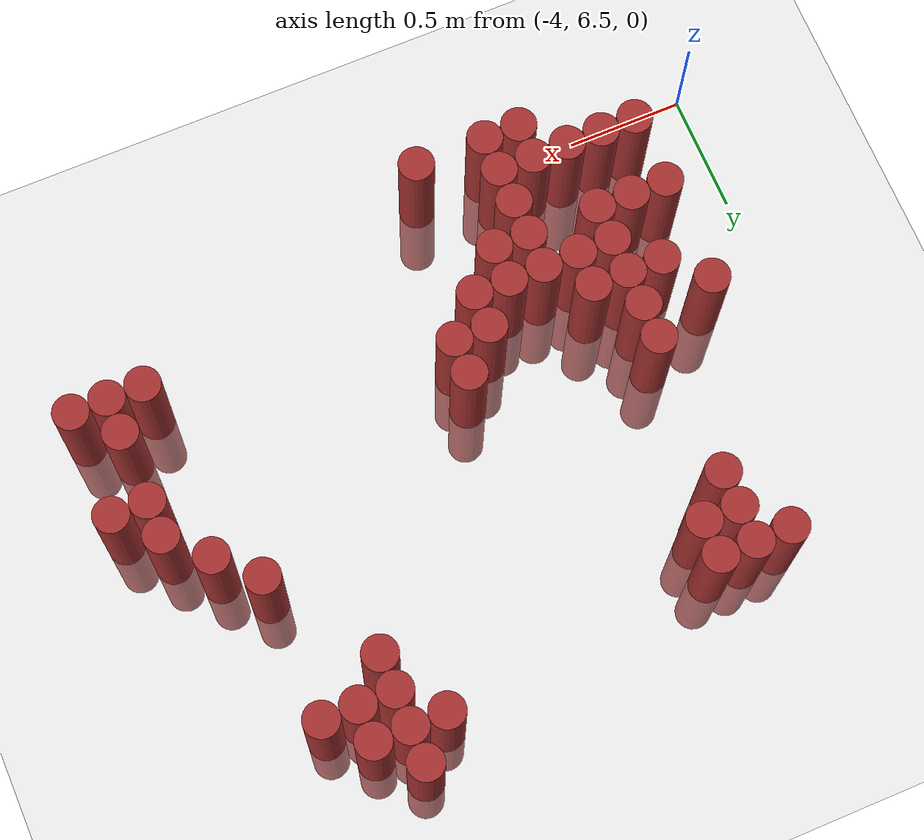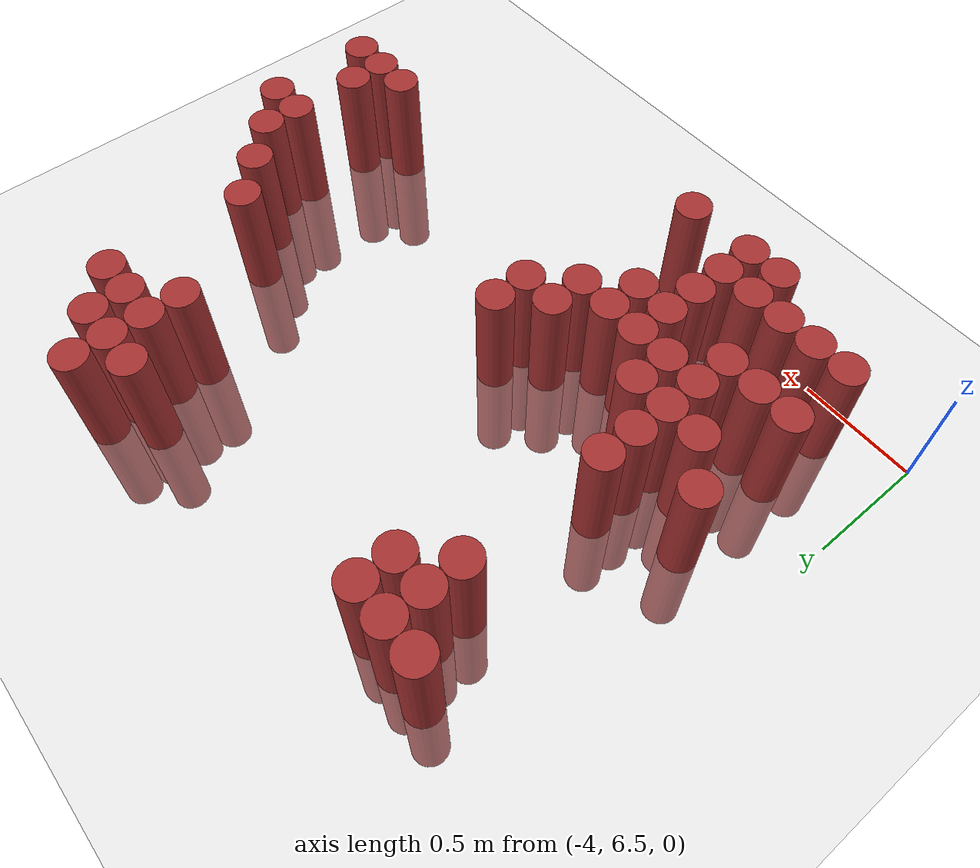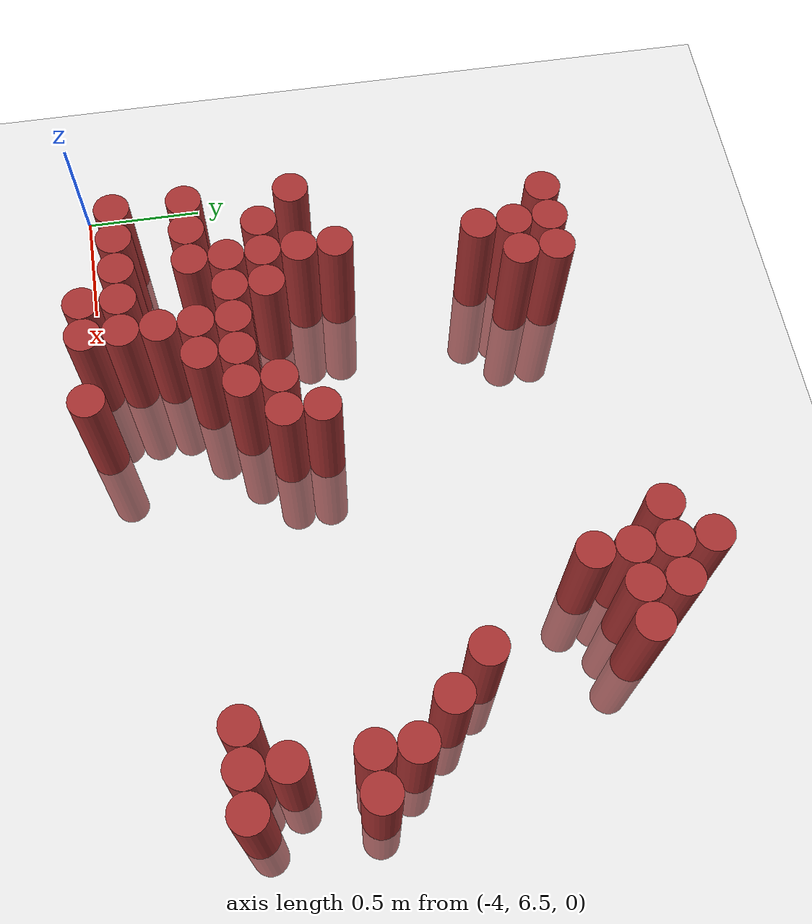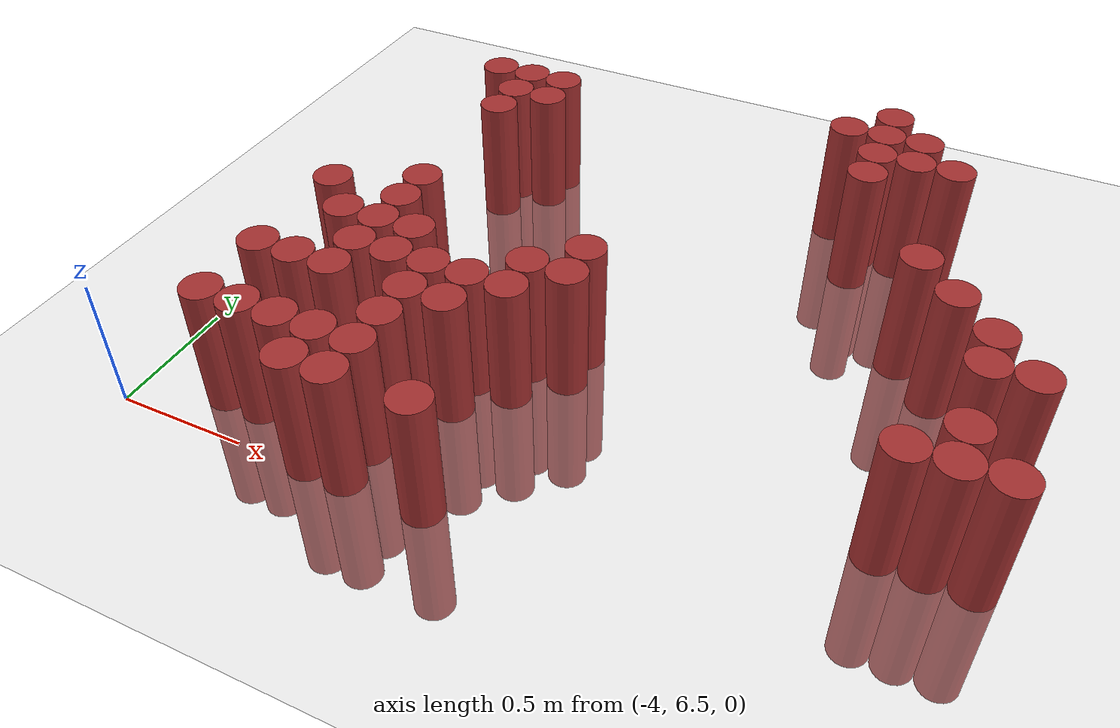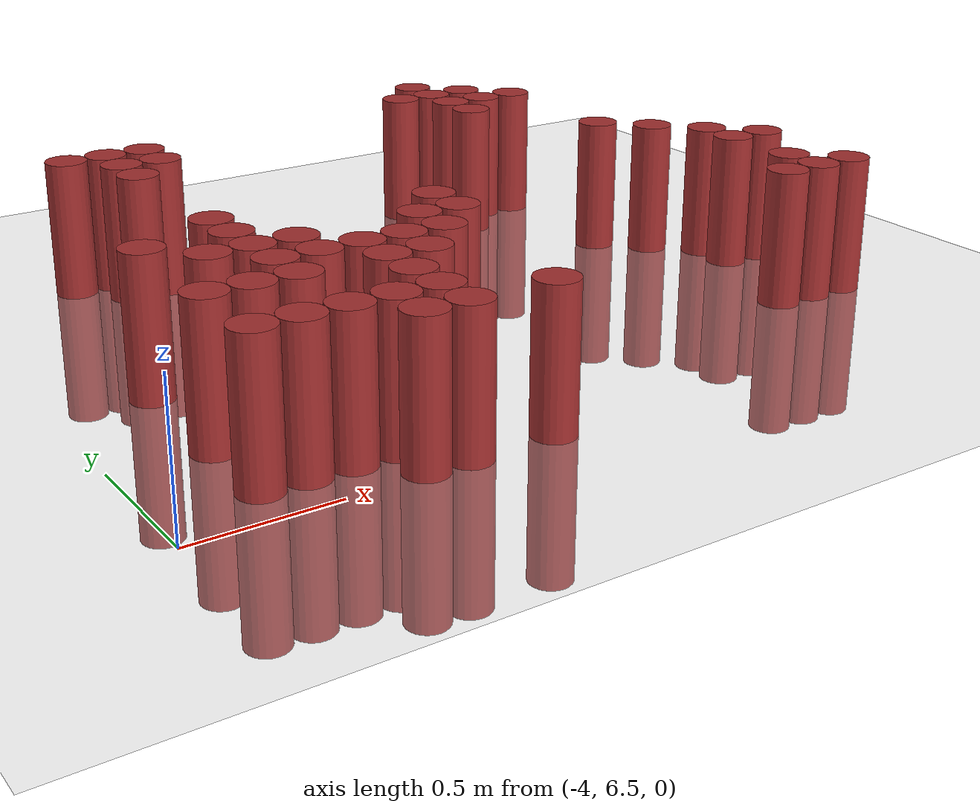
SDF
<sdf version="1.6">
 <world name="default">
  <model name="ground_plane">
   <static>1</static>
   <link name="link">
    <collision name="collision">
     <geometry><plane><normal>0 0 1</normal><size>100 100</size></plane></geometry>
     <surface><friction><ode><mu>100</mu><mu2>50</mu2></ode></friction></surface>
    </collision>
    <visual name="visual">
     <cast_shadows>0</cast_shadows>
     <geometry><plane><normal>0 0 1</normal><size>100 100</size></plane></geometry>
     <material>
      <script><uri>file://media/materials/scripts/gazebo.material</uri><name>Gazebo/Grey</name></script>
     </material>
    </visual>
   </link>
  </model>
  <model name="unit_cylinder_175">
   <static>1</static>
   <pose>-3.675000 6.675000 0.000000 0.000000 0.000000 0.000000</pose>
   <link name="link">
    <inertial>
     <mass>1</mass>
     <inertia><ixx>0.145833</ixx><ixy>0</ixy><ixz>0</ixz><iyy>0.145833</iyy><iyz>0</iyz><izz>0.125</izz></inertia>
    </inertial>
    <collision name="collision">
     <geometry><cylinder><radius>0.075000</radius><length>1</length></cylinder></geometry>
    </collision>
    <visual name="visual">
     <geometry><cylinder><radius>0.075000</radius><length>1</length></cylinder></geometry>
     <material>
      <ambient>0.648000 0.192000 0.192000 1</ambient>
      <diffuse>0.648000 0.192000 0.192000 1</diffuse>
     </material>
     <material>
      <script><name>Gazebo/Grey</name><uri>file://media/materials/scripts/gazebo.material</uri></script>
     </material>
    </visual>
   </link>
  </model>
  <model name="unit_cylinder_176">
   <static>1</static>
   <pose>-3.675000 6.975000 0.000000 0.000000 0.000000 0.000000</pose>
   <link name="link">
    <inertial>
     <mass>1</mass>
     <inertia><ixx>0.145833</ixx><ixy>0</ixy><ixz>0</ixz><iyy>0.145833</iyy><iyz>0</iyz><izz>0.125</izz></inertia>
    </inertial>
    <collision name="collision">
     <geometry><cylinder><radius>0.075000</radius><length>1</length></cylinder></geometry>
    </collision>
    <visual name="visual">
     <geometry><cylinder><radius>0.075000</radius><length>1</length></cylinder></geometry>
     <material>
      <ambient>0.648000 0.192000 0.192000 1</ambient>
      <diffuse>0.648000 0.192000 0.192000 1</diffuse>
     </material>
     <material>
      <script><name>Gazebo/Grey</name><uri>file://media/materials/scripts/gazebo.material</uri></script>
     </material>
    </visual>
   </link>
  </model>
  <model name="unit_cylinder_177">
   <static>1</static>
   <pose>-3.675000 7.425000 0.000000 0.000000 0.000000 0.000000</pose>
   <link name="link">
    <inertial>
     <mass>1</mass>
     <inertia><ixx>0.145833</ixx><ixy>0</ixy><ixz>0</ixz><iyy>0.145833</iyy><iyz>0</iyz><izz>0.125</izz></inertia>
    </inertial>
    <collision name="collision">
     <geometry><cylinder><radius>0.075000</radius><length>1</length></cylinder></geometry>
    </collision>
    <visual name="visual">
     <geometry><cylinder><radius>0.075000</radius><length>1</length></cylinder></geometry>
     <material>
      <ambient>0.648000 0.192000 0.192000 1</ambient>
      <diffuse>0.648000 0.192000 0.192000 1</diffuse>
     </material>
     <material>
      <script><name>Gazebo/Grey</name><uri>file://media/materials/scripts/gazebo.material</uri></script>
     </material>
    </visual>
   </link>
  </model>
  <model name="unit_cylinder_179">
   <static>1</static>
   <pose>-3.525000 6.675000 0.000000 0.000000 0.000000 0.000000</pose>
   <link name="link">
    <inertial>
     <mass>1</mass>
     <inertia><ixx>0.145833</ixx><ixy>0</ixy><ixz>0</ixz><iyy>0.145833</iyy><iyz>0</iyz><izz>0.125</izz></inertia>
    </inertial>
    <collision name="collision">
     <geometry><cylinder><radius>0.075000</radius><length>1</length></cylinder></geometry>
    </collision>
    <visual name="visual">
     <geometry><cylinder><radius>0.075000</radius><length>1</length></cylinder></geometry>
     <material>
      <ambient>0.648000 0.192000 0.192000 1</ambient>
      <diffuse>0.648000 0.192000 0.192000 1</diffuse>
     </material>
     <material>
      <script><name>Gazebo/Grey</name><uri>file://media/materials/scripts/gazebo.material</uri></script>
     </material>
    </visual>
   </link>
  </model>
  <model name="unit_cylinder_180">
   <static>1</static>
   <pose>-3.525000 6.975000 0.000000 0.000000 0.000000 0.000000</pose>
   <link name="link">
    <inertial>
     <mass>1</mass>
     <inertia><ixx>0.145833</ixx><ixy>0</ixy><ixz>0</ixz><iyy>0.145833</iyy><iyz>0</iyz><izz>0.125</izz></inertia>
    </inertial>
    <collision name="collision">
     <geometry><cylinder><radius>0.075000</radius><length>1</length></cylinder></geometry>
    </collision>
    <visual name="visual">
     <geometry><cylinder><radius>0.075000</radius><length>1</length></cylinder></geometry>
     <material>
      <ambient>0.648000 0.192000 0.192000 1</ambient>
      <diffuse>0.648000 0.192000 0.192000 1</diffuse>
     </material>
     <material>
      <script><name>Gazebo/Grey</name><uri>file://media/materials/scripts/gazebo.material</uri></script>
     </material>
    </visual>
   </link>
  </model>
  <model name="unit_cylinder_181">
   <static>1</static>
   <pose>-3.525000 7.275000 0.000000 0.000000 0.000000 0.000000</pose>
   <link name="link">
    <inertial>
     <mass>1</mass>
     <inertia><ixx>0.145833</ixx><ixy>0</ixy><ixz>0</ixz><iyy>0.145833</iyy><iyz>0</iyz><izz>0.125</izz></inertia>
    </inertial>
    <collision name="collision">
     <geometry><cylinder><radius>0.075000</radius><length>1</length></cylinder></geometry>
    </collision>
    <visual name="visual">
     <geometry><cylinder><radius>0.075000</radius><length>1</length></cylinder></geometry>
     <material>
      <ambient>0.648000 0.192000 0.192000 1</ambient>
      <diffuse>0.648000 0.192000 0.192000 1</diffuse>
     </material>
     <material>
      <script><name>Gazebo/Grey</name><uri>file://media/materials/scripts/gazebo.material</uri></script>
     </material>
    </visual>
   </link>
  </model>
  <model name="unit_cylinder_182">
   <static>1</static>
   <pose>-3.525000 8.475000 0.000000 0.000000 0.000000 0.000000</pose>
   <link name="link">
    <inertial>
     <mass>1</mass>
     <inertia><ixx>0.145833</ixx><ixy>0</ixy><ixz>0</ixz><iyy>0.145833</iyy><iyz>0</iyz><izz>0.125</izz></inertia>
    </inertial>
    <collision name="collision">
     <geometry><cylinder><radius>0.075000</radius><length>1</length></cylinder></geometry>
    </collision>
    <visual name="visual">
     <geometry><cylinder><radius>0.075000</radius><length>1</length></cylinder></geometry>
     <material>
      <ambient>0.648000 0.192000 0.192000 1</ambient>
      <diffuse>0.648000 0.192000 0.192000 1</diffuse>
     </material>
     <material>
      <script><name>Gazebo/Grey</name><uri>file://media/materials/scripts/gazebo.material</uri></script>
     </material>
    </visual>
   </link>
  </model>
  <model name="unit_cylinder_183">
   <static>1</static>
   <pose>-3.375000 6.675000 0.000000 0.000000 0.000000 0.000000</pose>
   <link name="link">
    <inertial>
     <mass>1</mass>
     <inertia><ixx>0.145833</ixx><ixy>0</ixy><ixz>0</ixz><iyy>0.145833</iyy><iyz>0</iyz><izz>0.125</izz></inertia>
    </inertial>
    <collision name="collision">
     <geometry><cylinder><radius>0.075000</radius><length>1</length></cylinder></geometry>
    </collision>
    <visual name="visual">
     <geometry><cylinder><radius>0.075000</radius><length>1</length></cylinder></geometry>
     <material>
      <ambient>0.648000 0.192000 0.192000 1</ambient>
      <diffuse>0.648000 0.192000 0.192000 1</diffuse>
     </material>
     <material>
      <script><name>Gazebo/Grey</name><uri>file://media/materials/scripts/gazebo.material</uri></script>
     </material>
    </visual>
   </link>
  </model>
  <model name="unit_cylinder_184">
   <static>1</static>
   <pose>-3.375000 6.975000 0.000000 0.000000 0.000000 0.000000</pose>
   <link name="link">
    <inertial>
     <mass>1</mass>
     <inertia><ixx>0.145833</ixx><ixy>0</ixy><ixz>0</ixz><iyy>0.145833</iyy><iyz>0</iyz><izz>0.125</izz></inertia>
    </inertial>
    <collision name="collision">
     <geometry><cylinder><radius>0.075000</radius><length>1</length></cylinder></geometry>
    </collision>
    <visual name="visual">
     <geometry><cylinder><radius>0.075000</radius><length>1</length></cylinder></geometry>
     <material>
      <ambient>0.648000 0.192000 0.192000 1</ambient>
      <diffuse>0.648000 0.192000 0.192000 1</diffuse>
     </material>
     <material>
      <script><name>Gazebo/Grey</name><uri>file://media/materials/scripts/gazebo.material</uri></script>
     </material>
    </visual>
   </link>
  </model>
  <model name="unit_cylinder_185">
   <static>1</static>
   <pose>-3.375000 7.125000 0.000000 0.000000 0.000000 0.000000</pose>
   <link name="link">
    <inertial>
     <mass>1</mass>
     <inertia><ixx>0.145833</ixx><ixy>0</ixy><ixz>0</ixz><iyy>0.145833</iyy><iyz>0</iyz><izz>0.125</izz></inertia>
    </inertial>
    <collision name="collision">
     <geometry><cylinder><radius>0.075000</radius><length>1</length></cylinder></geometry>
    </collision>
    <visual name="visual">
     <geometry><cylinder><radius>0.075000</radius><length>1</length></cylinder></geometry>
     <material>
      <ambient>0.648000 0.192000 0.192000 1</ambient>
      <diffuse>0.648000 0.192000 0.192000 1</diffuse>
     </material>
     <material>
      <script><name>Gazebo/Grey</name><uri>file://media/materials/scripts/gazebo.material</uri></script>
     </material>
    </visual>
   </link>
  </model>
  <model name="unit_cylinder_186">
   <static>1</static>
   <pose>-3.375000 7.275000 0.000000 0.000000 0.000000 0.000000</pose>
   <link name="link">
    <inertial>
     <mass>1</mass>
     <inertia><ixx>0.145833</ixx><ixy>0</ixy><ixz>0</ixz><iyy>0.145833</iyy><iyz>0</iyz><izz>0.125</izz></inertia>
    </inertial>
    <collision name="collision">
     <geometry><cylinder><radius>0.075000</radius><length>1</length></cylinder></geometry>
    </collision>
    <visual name="visual">
     <geometry><cylinder><radius>0.075000</radius><length>1</length></cylinder></geometry>
     <material>
      <ambient>0.648000 0.192000 0.192000 1</ambient>
      <diffuse>0.648000 0.192000 0.192000 1</diffuse>
     </material>
     <material>
      <script><name>Gazebo/Grey</name><uri>file://media/materials/scripts/gazebo.material</uri></script>
     </material>
    </visual>
   </link>
  </model>
  <model name="unit_cylinder_187">
   <static>1</static>
   <pose>-3.375000 7.425000 0.000000 0.000000 0.000000 0.000000</pose>
   <link name="link">
    <inertial>
     <mass>1</mass>
     <inertia><ixx>0.145833</ixx><ixy>0</ixy><ixz>0</ixz><iyy>0.145833</iyy><iyz>0</iyz><izz>0.125</izz></inertia>
    </inertial>
    <collision name="collision">
     <geometry><cylinder><radius>0.075000</radius><length>1</length></cylinder></geometry>
    </collision>
    <visual name="visual">
     <geometry><cylinder><radius>0.075000</radius><length>1</length></cylinder></geometry>
     <material>
      <ambient>0.648000 0.192000 0.192000 1</ambient>
      <diffuse>0.648000 0.192000 0.192000 1</diffuse>
     </material>
     <material>
      <script><name>Gazebo/Grey</name><uri>file://media/materials/scripts/gazebo.material</uri></script>
     </material>
    </visual>
   </link>
  </model>
  <model name="unit_cylinder_188">
   <static>1</static>
   <pose>-3.375000 7.575000 0.000000 0.000000 0.000000 0.000000</pose>
   <link name="link">
    <inertial>
     <mass>1</mass>
     <inertia><ixx>0.145833</ixx><ixy>0</ixy><ixz>0</ixz><iyy>0.145833</iyy><iyz>0</iyz><izz>0.125</izz></inertia>
    </inertial>
    <collision name="collision">
     <geometry><cylinder><radius>0.075000</radius><length>1</length></cylinder></geometry>
    </collision>
    <visual name="visual">
     <geometry><cylinder><radius>0.075000</radius><length>1</length></cylinder></geometry>
     <material>
      <ambient>0.648000 0.192000 0.192000 1</ambient>
      <diffuse>0.648000 0.192000 0.192000 1</diffuse>
     </material>
     <material>
      <script><name>Gazebo/Grey</name><uri>file://media/materials/scripts/gazebo.material</uri></script>
     </material>
    </visual>
   </link>
  </model>
  <model name="unit_cylinder_189">
   <static>1</static>
   <pose>-3.375000 8.175000 0.000000 0.000000 0.000000 0.000000</pose>
   <link name="link">
    <inertial>
     <mass>1</mass>
     <inertia><ixx>0.145833</ixx><ixy>0</ixy><ixz>0</ixz><iyy>0.145833</iyy><iyz>0</iyz><izz>0.125</izz></inertia>
    </inertial>
    <collision name="collision">
     <geometry><cylinder><radius>0.075000</radius><length>1</length></cylinder></geometry>
    </collision>
    <visual name="visual">
     <geometry><cylinder><radius>0.075000</radius><length>1</length></cylinder></geometry>
     <material>
      <ambient>0.648000 0.192000 0.192000 1</ambient>
      <diffuse>0.648000 0.192000 0.192000 1</diffuse>
     </material>
     <material>
      <script><name>Gazebo/Grey</name><uri>file://media/materials/scripts/gazebo.material</uri></script>
     </material>
    </visual>
   </link>
  </model>
  <model name="unit_cylinder_190">
   <static>1</static>
   <pose>-3.375000 8.325000 0.000000 0.000000 0.000000 0.000000</pose>
   <link name="link">
    <inertial>
     <mass>1</mass>
     <inertia><ixx>0.145833</ixx><ixy>0</ixy><ixz>0</ixz><iyy>0.145833</iyy><iyz>0</iyz><izz>0.125</izz></inertia>
    </inertial>
    <collision name="collision">
     <geometry><cylinder><radius>0.075000</radius><length>1</length></cylinder></geometry>
    </collision>
    <visual name="visual">
     <geometry><cylinder><radius>0.075000</radius><length>1</length></cylinder></geometry>
     <material>
      <ambient>0.648000 0.192000 0.192000 1</ambient>
      <diffuse>0.648000 0.192000 0.192000 1</diffuse>
     </material>
     <material>
      <script><name>Gazebo/Grey</name><uri>file://media/materials/scripts/gazebo.material</uri></script>
     </material>
    </visual>
   </link>
  </model>
  <model name="unit_cylinder_191">
   <static>1</static>
   <pose>-3.375000 8.475000 0.000000 0.000000 0.000000 0.000000</pose>
   <link name="link">
    <inertial>
     <mass>1</mass>
     <inertia><ixx>0.145833</ixx><ixy>0</ixy><ixz>0</ixz><iyy>0.145833</iyy><iyz>0</iyz><izz>0.125</izz></inertia>
    </inertial>
    <collision name="collision">
     <geometry><cylinder><radius>0.075000</radius><length>1</length></cylinder></geometry>
    </collision>
    <visual name="visual">
     <geometry><cylinder><radius>0.075000</radius><length>1</length></cylinder></geometry>
     <material>
      <ambient>0.648000 0.192000 0.192000 1</ambient>
      <diffuse>0.648000 0.192000 0.192000 1</diffuse>
     </material>
     <material>
      <script><name>Gazebo/Grey</name><uri>file://media/materials/scripts/gazebo.material</uri></script>
     </material>
    </visual>
   </link>
  </model>
  <model name="unit_cylinder_192">
   <static>1</static>
   <pose>-3.225000 6.525000 0.000000 0.000000 0.000000 0.000000</pose>
   <link name="link">
    <inertial>
     <mass>1</mass>
     <inertia><ixx>0.145833</ixx><ixy>0</ixy><ixz>0</ixz><iyy>0.145833</iyy><iyz>0</iyz><izz>0.125</izz></inertia>
    </inertial>
    <collision name="collision">
     <geometry><cylinder><radius>0.075000</radius><length>1</length></cylinder></geometry>
    </collision>
    <visual name="visual">
     <geometry><cylinder><radius>0.075000</radius><length>1</length></cylinder></geometry>
     <material>
      <ambient>0.648000 0.192000 0.192000 1</ambient>
      <diffuse>0.648000 0.192000 0.192000 1</diffuse>
     </material>
     <material>
      <script><name>Gazebo/Grey</name><uri>file://media/materials/scripts/gazebo.material</uri></script>
     </material>
    </visual>
   </link>
  </model>
  <model name="unit_cylinder_193">
   <static>1</static>
   <pose>-3.225000 6.675000 0.000000 0.000000 0.000000 0.000000</pose>
   <link name="link">
    <inertial>
     <mass>1</mass>
     <inertia><ixx>0.145833</ixx><ixy>0</ixy><ixz>0</ixz><iyy>0.145833</iyy><iyz>0</iyz><izz>0.125</izz></inertia>
    </inertial>
    <collision name="collision">
     <geometry><cylinder><radius>0.075000</radius><length>1</length></cylinder></geometry>
    </collision>
    <visual name="visual">
     <geometry><cylinder><radius>0.075000</radius><length>1</length></cylinder></geometry>
     <material>
      <ambient>0.648000 0.192000 0.192000 1</ambient>
      <diffuse>0.648000 0.192000 0.192000 1</diffuse>
     </material>
     <material>
      <script><name>Gazebo/Grey</name><uri>file://media/materials/scripts/gazebo.material</uri></script>
     </material>
    </visual>
   </link>
  </model>
  <model name="unit_cylinder_194">
   <static>1</static>
   <pose>-3.225000 7.125000 0.000000 0.000000 0.000000 0.000000</pose>
   <link name="link">
    <inertial>
     <mass>1</mass>
     <inertia><ixx>0.145833</ixx><ixy>0</ixy><ixz>0</ixz><iyy>0.145833</iyy><iyz>0</iyz><izz>0.125</izz></inertia>
    </inertial>
    <collision name="collision">
     <geometry><cylinder><radius>0.075000</radius><length>1</length></cylinder></geometry>
    </collision>
    <visual name="visual">
     <geometry><cylinder><radius>0.075000</radius><length>1</length></cylinder></geometry>
     <material>
      <ambient>0.648000 0.192000 0.192000 1</ambient>
      <diffuse>0.648000 0.192000 0.192000 1</diffuse>
     </material>
     <material>
      <script><name>Gazebo/Grey</name><uri>file://media/materials/scripts/gazebo.material</uri></script>
     </material>
    </visual>
   </link>
  </model>
  <model name="unit_cylinder_195">
   <static>1</static>
   <pose>-3.225000 7.275000 0.000000 0.000000 0.000000 0.000000</pose>
   <link name="link">
    <inertial>
     <mass>1</mass>
     <inertia><ixx>0.145833</ixx><ixy>0</ixy><ixz>0</ixz><iyy>0.145833</iyy><iyz>0</iyz><izz>0.125</izz></inertia>
    </inertial>
    <collision name="collision">
     <geometry><cylinder><radius>0.075000</radius><length>1</length></cylinder></geometry>
    </collision>
    <visual name="visual">
     <geometry><cylinder><radius>0.075000</radius><length>1</length></cylinder></geometry>
     <material>
      <ambient>0.648000 0.192000 0.192000 1</ambient>
      <diffuse>0.648000 0.192000 0.192000 1</diffuse>
     </material>
     <material>
      <script><name>Gazebo/Grey</name><uri>file://media/materials/scripts/gazebo.material</uri></script>
     </material>
    </visual>
   </link>
  </model>
  <model name="unit_cylinder_196">
   <static>1</static>
   <pose>-3.225000 8.325000 0.000000 0.000000 0.000000 0.000000</pose>
   <link name="link">
    <inertial>
     <mass>1</mass>
     <inertia><ixx>0.145833</ixx><ixy>0</ixy><ixz>0</ixz><iyy>0.145833</iyy><iyz>0</iyz><izz>0.125</izz></inertia>
    </inertial>
    <collision name="collision">
     <geometry><cylinder><radius>0.075000</radius><length>1</length></cylinder></geometry>
    </collision>
    <visual name="visual">
     <geometry><cylinder><radius>0.075000</radius><length>1</length></cylinder></geometry>
     <material>
      <ambient>0.648000 0.192000 0.192000 1</ambient>
      <diffuse>0.648000 0.192000 0.192000 1</diffuse>
     </material>
     <material>
      <script><name>Gazebo/Grey</name><uri>file://media/materials/scripts/gazebo.material</uri></script>
     </material>
    </visual>
   </link>
  </model>
  <model name="unit_cylinder_197">
   <static>1</static>
   <pose>-3.225000 8.475000 0.000000 0.000000 0.000000 0.000000</pose>
   <link name="link">
    <inertial>
     <mass>1</mass>
     <inertia><ixx>0.145833</ixx><ixy>0</ixy><ixz>0</ixz><iyy>0.145833</iyy><iyz>0</iyz><izz>0.125</izz></inertia>
    </inertial>
    <collision name="collision">
     <geometry><cylinder><radius>0.075000</radius><length>1</length></cylinder></geometry>
    </collision>
    <visual name="visual">
     <geometry><cylinder><radius>0.075000</radius><length>1</length></cylinder></geometry>
     <material>
      <ambient>0.648000 0.192000 0.192000 1</ambient>
      <diffuse>0.648000 0.192000 0.192000 1</diffuse>
     </material>
     <material>
      <script><name>Gazebo/Grey</name><uri>file://media/materials/scripts/gazebo.material</uri></script>
     </material>
    </visual>
   </link>
  </model>
  <model name="unit_cylinder_200">
   <static>1</static>
   <pose>-3.075000 6.525000 0.000000 0.000000 0.000000 0.000000</pose>
   <link name="link">
    <inertial>
     <mass>1</mass>
     <inertia><ixx>0.145833</ixx><ixy>0</ixy><ixz>0</ixz><iyy>0.145833</iyy><iyz>0</iyz><izz>0.125</izz></inertia>
    </inertial>
    <collision name="collision">
     <geometry><cylinder><radius>0.075000</radius><length>1</length></cylinder></geometry>
    </collision>
    <visual name="visual">
     <geometry><cylinder><radius>0.075000</radius><length>1</length></cylinder></geometry>
     <material>
      <ambient>0.648000 0.192000 0.192000 1</ambient>
      <diffuse>0.648000 0.192000 0.192000 1</diffuse>
     </material>
     <material>
      <script><name>Gazebo/Grey</name><uri>file://media/materials/scripts/gazebo.material</uri></script>
     </material>
    </visual>
   </link>
  </model>
  <model name="unit_cylinder_201">
   <static>1</static>
   <pose>-3.075000 6.675000 0.000000 0.000000 0.000000 0.000000</pose>
   <link name="link">
    <inertial>
     <mass>1</mass>
     <inertia><ixx>0.145833</ixx><ixy>0</ixy><ixz>0</ixz><iyy>0.145833</iyy><iyz>0</iyz><izz>0.125</izz></inertia>
    </inertial>
    <collision name="collision">
     <geometry><cylinder><radius>0.075000</radius><length>1</length></cylinder></geometry>
    </collision>
    <visual name="visual">
     <geometry><cylinder><radius>0.075000</radius><length>1</length></cylinder></geometry>
     <material>
      <ambient>0.648000 0.192000 0.192000 1</ambient>
      <diffuse>0.648000 0.192000 0.192000 1</diffuse>
     </material>
     <material>
      <script><name>Gazebo/Grey</name><uri>file://media/materials/scripts/gazebo.material</uri></script>
     </material>
    </visual>
   </link>
  </model>
  <model name="unit_cylinder_202">
   <static>1</static>
   <pose>-3.075000 6.825000 0.000000 0.000000 0.000000 0.000000</pose>
   <link name="link">
    <inertial>
     <mass>1</mass>
     <inertia><ixx>0.145833</ixx><ixy>0</ixy><ixz>0</ixz><iyy>0.145833</iyy><iyz>0</iyz><izz>0.125</izz></inertia>
    </inertial>
    <collision name="collision">
     <geometry><cylinder><radius>0.075000</radius><length>1</length></cylinder></geometry>
    </collision>
    <visual name="visual">
     <geometry><cylinder><radius>0.075000</radius><length>1</length></cylinder></geometry>
     <material>
      <ambient>0.648000 0.192000 0.192000 1</ambient>
      <diffuse>0.648000 0.192000 0.192000 1</diffuse>
     </material>
     <material>
      <script><name>Gazebo/Grey</name><uri>file://media/materials/scripts/gazebo.material</uri></script>
     </material>
    </visual>
   </link>
  </model>
  <model name="unit_cylinder_203">
   <static>1</static>
   <pose>-3.075000 6.975000 0.000000 0.000000 0.000000 0.000000</pose>
   <link name="link">
    <inertial>
     <mass>1</mass>
     <inertia><ixx>0.145833</ixx><ixy>0</ixy><ixz>0</ixz><iyy>0.145833</iyy><iyz>0</iyz><izz>0.125</izz></inertia>
    </inertial>
    <collision name="collision">
     <geometry><cylinder><radius>0.075000</radius><length>1</length></cylinder></geometry>
    </collision>
    <visual name="visual">
     <geometry><cylinder><radius>0.075000</radius><length>1</length></cylinder></geometry>
     <material>
      <ambient>0.648000 0.192000 0.192000 1</ambient>
      <diffuse>0.648000 0.192000 0.192000 1</diffuse>
     </material>
     <material>
      <script><name>Gazebo/Grey</name><uri>file://media/materials/scripts/gazebo.material</uri></script>
     </material>
    </visual>
   </link>
  </model>
  <model name="unit_cylinder_204">
   <static>1</static>
   <pose>-3.075000 7.125000 0.000000 0.000000 0.000000 0.000000</pose>
   <link name="link">
    <inertial>
     <mass>1</mass>
     <inertia><ixx>0.145833</ixx><ixy>0</ixy><ixz>0</ixz><iyy>0.145833</iyy><iyz>0</iyz><izz>0.125</izz></inertia>
    </inertial>
    <collision name="collision">
     <geometry><cylinder><radius>0.075000</radius><length>1</length></cylinder></geometry>
    </collision>
    <visual name="visual">
     <geometry><cylinder><radius>0.075000</radius><length>1</length></cylinder></geometry>
     <material>
      <ambient>0.648000 0.192000 0.192000 1</ambient>
      <diffuse>0.648000 0.192000 0.192000 1</diffuse>
     </material>
     <material>
      <script><name>Gazebo/Grey</name><uri>file://media/materials/scripts/gazebo.material</uri></script>
     </material>
    </visual>
   </link>
  </model>
  <model name="unit_cylinder_207">
   <static>1</static>
   <pose>-2.925000 6.975000 0.000000 0.000000 0.000000 0.000000</pose>
   <link name="link">
    <inertial>
     <mass>1</mass>
     <inertia><ixx>0.145833</ixx><ixy>0</ixy><ixz>0</ixz><iyy>0.145833</iyy><iyz>0</iyz><izz>0.125</izz></inertia>
    </inertial>
    <collision name="collision">
     <geometry><cylinder><radius>0.075000</radius><length>1</length></cylinder></geometry>
    </collision>
    <visual name="visual">
     <geometry><cylinder><radius>0.075000</radius><length>1</length></cylinder></geometry>
     <material>
      <ambient>0.648000 0.192000 0.192000 1</ambient>
      <diffuse>0.648000 0.192000 0.192000 1</diffuse>
     </material>
     <material>
      <script><name>Gazebo/Grey</name><uri>file://media/materials/scripts/gazebo.material</uri></script>
     </material>
    </visual>
   </link>
  </model>
  <model name="unit_cylinder_208">
   <static>1</static>
   <pose>-2.925000 7.125000 0.000000 0.000000 0.000000 0.000000</pose>
   <link name="link">
    <inertial>
     <mass>1</mass>
     <inertia><ixx>0.145833</ixx><ixy>0</ixy><ixz>0</ixz><iyy>0.145833</iyy><iyz>0</iyz><izz>0.125</izz></inertia>
    </inertial>
    <collision name="collision">
     <geometry><cylinder><radius>0.075000</radius><length>1</length></cylinder></geometry>
    </collision>
    <visual name="visual">
     <geometry><cylinder><radius>0.075000</radius><length>1</length></cylinder></geometry>
     <material>
      <ambient>0.648000 0.192000 0.192000 1</ambient>
      <diffuse>0.648000 0.192000 0.192000 1</diffuse>
     </material>
     <material>
      <script><name>Gazebo/Grey</name><uri>file://media/materials/scripts/gazebo.material</uri></script>
     </material>
    </visual>
   </link>
  </model>
  <model name="unit_cylinder_211">
   <static>1</static>
   <pose>-2.775000 6.525000 0.000000 0.000000 0.000000 0.000000</pose>
   <link name="link">
    <inertial>
     <mass>1</mass>
     <inertia><ixx>0.145833</ixx><ixy>0</ixy><ixz>0</ixz><iyy>0.145833</iyy><iyz>0</iyz><izz>0.125</izz></inertia>
    </inertial>
    <collision name="collision">
     <geometry><cylinder><radius>0.075000</radius><length>1</length></cylinder></geometry>
    </collision>
    <visual name="visual">
     <geometry><cylinder><radius>0.075000</radius><length>1</length></cylinder></geometry>
     <material>
      <ambient>0.648000 0.192000 0.192000 1</ambient>
      <diffuse>0.648000 0.192000 0.192000 1</diffuse>
     </material>
     <material>
      <script><name>Gazebo/Grey</name><uri>file://media/materials/scripts/gazebo.material</uri></script>
     </material>
    </visual>
   </link>
  </model>
  <model name="unit_cylinder_212">
   <static>1</static>
   <pose>-2.775000 7.125000 0.000000 0.000000 0.000000 0.000000</pose>
   <link name="link">
    <inertial>
     <mass>1</mass>
     <inertia><ixx>0.145833</ixx><ixy>0</ixy><ixz>0</ixz><iyy>0.145833</iyy><iyz>0</iyz><izz>0.125</izz></inertia>
    </inertial>
    <collision name="collision">
     <geometry><cylinder><radius>0.075000</radius><length>1</length></cylinder></geometry>
    </collision>
    <visual name="visual">
     <geometry><cylinder><radius>0.075000</radius><length>1</length></cylinder></geometry>
     <material>
      <ambient>0.648000 0.192000 0.192000 1</ambient>
      <diffuse>0.648000 0.192000 0.192000 1</diffuse>
     </material>
     <material>
      <script><name>Gazebo/Grey</name><uri>file://media/materials/scripts/gazebo.material</uri></script>
     </material>
    </visual>
   </link>
  </model>
  <model name="unit_cylinder_213">
   <static>1</static>
   <pose>-2.775000 7.275000 0.000000 0.000000 0.000000 0.000000</pose>
   <link name="link">
    <inertial>
     <mass>1</mass>
     <inertia><ixx>0.145833</ixx><ixy>0</ixy><ixz>0</ixz><iyy>0.145833</iyy><iyz>0</iyz><izz>0.125</izz></inertia>
    </inertial>
    <collision name="collision">
     <geometry><cylinder><radius>0.075000</radius><length>1</length></cylinder></geometry>
    </collision>
    <visual name="visual">
     <geometry><cylinder><radius>0.075000</radius><length>1</length></cylinder></geometry>
     <material>
      <ambient>0.648000 0.192000 0.192000 1</ambient>
      <diffuse>0.648000 0.192000 0.192000 1</diffuse>
     </material>
     <material>
      <script><name>Gazebo/Grey</name><uri>file://media/materials/scripts/gazebo.material</uri></script>
     </material>
    </visual>
   </link>
  </model>
  <model name="unit_cylinder_214">
   <static>1</static>
   <pose>-2.625000 7.275000 0.000000 0.000000 0.000000 0.000000</pose>
   <link name="link">
    <inertial>
     <mass>1</mass>
     <inertia><ixx>0.145833</ixx><ixy>0</ixy><ixz>0</ixz><iyy>0.145833</iyy><iyz>0</iyz><izz>0.125</izz></inertia>
    </inertial>
    <collision name="collision">
     <geometry><cylinder><radius>0.075000</radius><length>1</length></cylinder></geometry>
    </collision>
    <visual name="visual">
     <geometry><cylinder><radius>0.075000</radius><length>1</length></cylinder></geometry>
     <material>
      <ambient>0.648000 0.192000 0.192000 1</ambient>
      <diffuse>0.648000 0.192000 0.192000 1</diffuse>
     </material>
     <material>
      <script><name>Gazebo/Grey</name><uri>file://media/materials/scripts/gazebo.material</uri></script>
     </material>
    </visual>
   </link>
  </model>
  <model name="unit_cylinder_215">
   <static>1</static>
   <pose>-2.625000 7.425000 0.000000 0.000000 0.000000 0.000000</pose>
   <link name="link">
    <inertial>
     <mass>1</mass>
     <inertia><ixx>0.145833</ixx><ixy>0</ixy><ixz>0</ixz><iyy>0.145833</iyy><iyz>0</iyz><izz>0.125</izz></inertia>
    </inertial>
    <collision name="collision">
     <geometry><cylinder><radius>0.075000</radius><length>1</length></cylinder></geometry>
    </collision>
    <visual name="visual">
     <geometry><cylinder><radius>0.075000</radius><length>1</length></cylinder></geometry>
     <material>
      <ambient>0.648000 0.192000 0.192000 1</ambient>
      <diffuse>0.648000 0.192000 0.192000 1</diffuse>
     </material>
     <material>
      <script><name>Gazebo/Grey</name><uri>file://media/materials/scripts/gazebo.material</uri></script>
     </material>
    </visual>
   </link>
  </model>
  <model name="unit_cylinder_216">
   <static>1</static>
   <pose>-2.025000 8.625000 0.000000 0.000000 0.000000 0.000000</pose>
   <link name="link">
    <inertial>
     <mass>1</mass>
     <inertia><ixx>0.145833</ixx><ixy>0</ixy><ixz>0</ixz><iyy>0.145833</iyy><iyz>0</iyz><izz>0.125</izz></inertia>
    </inertial>
    <collision name="collision">
     <geometry><cylinder><radius>0.075000</radius><length>1</length></cylinder></geometry>
    </collision>
    <visual name="visual">
     <geometry><cylinder><radius>0.075000</radius><length>1</length></cylinder></geometry>
     <material>
      <ambient>0.648000 0.192000 0.192000 1</ambient>
      <diffuse>0.648000 0.192000 0.192000 1</diffuse>
     </material>
     <material>
      <script><name>Gazebo/Grey</name><uri>file://media/materials/scripts/gazebo.material</uri></script>
     </material>
    </visual>
   </link>
  </model>
  <model name="unit_cylinder_217">
   <static>1</static>
   <pose>-1.875000 8.325000 0.000000 0.000000 0.000000 0.000000</pose>
   <link name="link">
    <inertial>
     <mass>1</mass>
     <inertia><ixx>0.145833</ixx><ixy>0</ixy><ixz>0</ixz><iyy>0.145833</iyy><iyz>0</iyz><izz>0.125</izz></inertia>
    </inertial>
    <collision name="collision">
     <geometry><cylinder><radius>0.075000</radius><length>1</length></cylinder></geometry>
    </collision>
    <visual name="visual">
     <geometry><cylinder><radius>0.075000</radius><length>1</length></cylinder></geometry>
     <material>
      <ambient>0.648000 0.192000 0.192000 1</ambient>
      <diffuse>0.648000 0.192000 0.192000 1</diffuse>
     </material>
     <material>
      <script><name>Gazebo/Grey</name><uri>file://media/materials/scripts/gazebo.material</uri></script>
     </material>
    </visual>
   </link>
  </model>
  <model name="unit_cylinder_218">
   <static>1</static>
   <pose>-1.875000 8.475000 0.000000 0.000000 0.000000 0.000000</pose>
   <link name="link">
    <inertial>
     <mass>1</mass>
     <inertia><ixx>0.145833</ixx><ixy>0</ixy><ixz>0</ixz><iyy>0.145833</iyy><iyz>0</iyz><izz>0.125</izz></inertia>
    </inertial>
    <collision name="collision">
     <geometry><cylinder><radius>0.075000</radius><length>1</length></cylinder></geometry>
    </collision>
    <visual name="visual">
     <geometry><cylinder><radius>0.075000</radius><length>1</length></cylinder></geometry>
     <material>
      <ambient>0.648000 0.192000 0.192000 1</ambient>
      <diffuse>0.648000 0.192000 0.192000 1</diffuse>
     </material>
     <material>
      <script><name>Gazebo/Grey</name><uri>file://media/materials/scripts/gazebo.material</uri></script>
     </material>
    </visual>
   </link>
  </model>
  <model name="unit_cylinder_219">
   <static>1</static>
   <pose>-1.875000 8.625000 0.000000 0.000000 0.000000 0.000000</pose>
   <link name="link">
    <inertial>
     <mass>1</mass>
     <inertia><ixx>0.145833</ixx><ixy>0</ixy><ixz>0</ixz><iyy>0.145833</iyy><iyz>0</iyz><izz>0.125</izz></inertia>
    </inertial>
    <collision name="collision">
     <geometry><cylinder><radius>0.075000</radius><length>1</length></cylinder></geometry>
    </collision>
    <visual name="visual">
     <geometry><cylinder><radius>0.075000</radius><length>1</length></cylinder></geometry>
     <material>
      <ambient>0.648000 0.192000 0.192000 1</ambient>
      <diffuse>0.648000 0.192000 0.192000 1</diffuse>
     </material>
     <material>
      <script><name>Gazebo/Grey</name><uri>file://media/materials/scripts/gazebo.material</uri></script>
     </material>
    </visual>
   </link>
  </model>
  <model name="unit_cylinder_220">
   <static>1</static>
   <pose>-1.875000 8.775000 0.000000 0.000000 0.000000 0.000000</pose>
   <link name="link">
    <inertial>
     <mass>1</mass>
     <inertia><ixx>0.145833</ixx><ixy>0</ixy><ixz>0</ixz><iyy>0.145833</iyy><iyz>0</iyz><izz>0.125</izz></inertia>
    </inertial>
    <collision name="collision">
     <geometry><cylinder><radius>0.075000</radius><length>1</length></cylinder></geometry>
    </collision>
    <visual name="visual">
     <geometry><cylinder><radius>0.075000</radius><length>1</length></cylinder></geometry>
     <material>
      <ambient>0.648000 0.192000 0.192000 1</ambient>
      <diffuse>0.648000 0.192000 0.192000 1</diffuse>
     </material>
     <material>
      <script><name>Gazebo/Grey</name><uri>file://media/materials/scripts/gazebo.material</uri></script>
     </material>
    </visual>
   </link>
  </model>
  <model name="unit_cylinder_221">
   <static>1</static>
   <pose>-1.725000 8.475000 0.000000 0.000000 0.000000 0.000000</pose>
   <link name="link">
    <inertial>
     <mass>1</mass>
     <inertia><ixx>0.145833</ixx><ixy>0</ixy><ixz>0</ixz><iyy>0.145833</iyy><iyz>0</iyz><izz>0.125</izz></inertia>
    </inertial>
    <collision name="collision">
     <geometry><cylinder><radius>0.075000</radius><length>1</length></cylinder></geometry>
    </collision>
    <visual name="visual">
     <geometry><cylinder><radius>0.075000</radius><length>1</length></cylinder></geometry>
     <material>
      <ambient>0.648000 0.192000 0.192000 1</ambient>
      <diffuse>0.648000 0.192000 0.192000 1</diffuse>
     </material>
     <material>
      <script><name>Gazebo/Grey</name><uri>file://media/materials/scripts/gazebo.material</uri></script>
     </material>
    </visual>
   </link>
  </model>
  <model name="unit_cylinder_222">
   <static>1</static>
   <pose>-1.725000 8.625000 0.000000 0.000000 0.000000 0.000000</pose>
   <link name="link">
    <inertial>
     <mass>1</mass>
     <inertia><ixx>0.145833</ixx><ixy>0</ixy><ixz>0</ixz><iyy>0.145833</iyy><iyz>0</iyz><izz>0.125</izz></inertia>
    </inertial>
    <collision name="collision">
     <geometry><cylinder><radius>0.075000</radius><length>1</length></cylinder></geometry>
    </collision>
    <visual name="visual">
     <geometry><cylinder><radius>0.075000</radius><length>1</length></cylinder></geometry>
     <material>
      <ambient>0.648000 0.192000 0.192000 1</ambient>
      <diffuse>0.648000 0.192000 0.192000 1</diffuse>
     </material>
     <material>
      <script><name>Gazebo/Grey</name><uri>file://media/materials/scripts/gazebo.material</uri></script>
     </material>
    </visual>
   </link>
  </model>
  <model name="unit_cylinder_223">
   <static>1</static>
   <pose>-1.575000 7.875000 0.000000 0.000000 0.000000 0.000000</pose>
   <link name="link">
    <inertial>
     <mass>1</mass>
     <inertia><ixx>0.145833</ixx><ixy>0</ixy><ixz>0</ixz><iyy>0.145833</iyy><iyz>0</iyz><izz>0.125</izz></inertia>
    </inertial>
    <collision name="collision">
     <geometry><cylinder><radius>0.075000</radius><length>1</length></cylinder></geometry>
    </collision>
    <visual name="visual">
     <geometry><cylinder><radius>0.075000</radius><length>1</length></cylinder></geometry>
     <material>
      <ambient>0.648000 0.192000 0.192000 1</ambient>
      <diffuse>0.648000 0.192000 0.192000 1</diffuse>
     </material>
     <material>
      <script><name>Gazebo/Grey</name><uri>file://media/materials/scripts/gazebo.material</uri></script>
     </material>
    </visual>
   </link>
  </model>
  <model name="unit_cylinder_224">
   <static>1</static>
   <pose>-1.575000 8.475000 0.000000 0.000000 0.000000 0.000000</pose>
   <link name="link">
    <inertial>
     <mass>1</mass>
     <inertia><ixx>0.145833</ixx><ixy>0</ixy><ixz>0</ixz><iyy>0.145833</iyy><iyz>0</iyz><izz>0.125</izz></inertia>
    </inertial>
    <collision name="collision">
     <geometry><cylinder><radius>0.075000</radius><length>1</length></cylinder></geometry>
    </collision>
    <visual name="visual">
     <geometry><cylinder><radius>0.075000</radius><length>1</length></cylinder></geometry>
     <material>
      <ambient>0.648000 0.192000 0.192000 1</ambient>
      <diffuse>0.648000 0.192000 0.192000 1</diffuse>
     </material>
     <material>
      <script><name>Gazebo/Grey</name><uri>file://media/materials/scripts/gazebo.material</uri></script>
     </material>
    </visual>
   </link>
  </model>
  <model name="unit_cylinder_225">
   <static>1</static>
   <pose>-1.425000 6.975000 0.000000 0.000000 0.000000 0.000000</pose>
   <link name="link">
    <inertial>
     <mass>1</mass>
     <inertia><ixx>0.145833</ixx><ixy>0</ixy><ixz>0</ixz><iyy>0.145833</iyy><iyz>0</iyz><izz>0.125</izz></inertia>
    </inertial>
    <collision name="collision">
     <geometry><cylinder><radius>0.075000</radius><length>1</length></cylinder></geometry>
    </collision>
    <visual name="visual">
     <geometry><cylinder><radius>0.075000</radius><length>1</length></cylinder></geometry>
     <material>
      <ambient>0.648000 0.192000 0.192000 1</ambient>
      <diffuse>0.648000 0.192000 0.192000 1</diffuse>
     </material>
     <material>
      <script><name>Gazebo/Grey</name><uri>file://media/materials/scripts/gazebo.material</uri></script>
     </material>
    </visual>
   </link>
  </model>
  <model name="unit_cylinder_226">
   <static>1</static>
   <pose>-1.425000 7.725000 0.000000 0.000000 0.000000 0.000000</pose>
   <link name="link">
    <inertial>
     <mass>1</mass>
     <inertia><ixx>0.145833</ixx><ixy>0</ixy><ixz>0</ixz><iyy>0.145833</iyy><iyz>0</iyz><izz>0.125</izz></inertia>
    </inertial>
    <collision name="collision">
     <geometry><cylinder><radius>0.075000</radius><length>1</length></cylinder></geometry>
    </collision>
    <visual name="visual">
     <geometry><cylinder><radius>0.075000</radius><length>1</length></cylinder></geometry>
     <material>
      <ambient>0.648000 0.192000 0.192000 1</ambient>
      <diffuse>0.648000 0.192000 0.192000 1</diffuse>
     </material>
     <material>
      <script><name>Gazebo/Grey</name><uri>file://media/materials/scripts/gazebo.material</uri></script>
     </material>
    </visual>
   </link>
  </model>
  <model name="unit_cylinder_227">
   <static>1</static>
   <pose>-1.275000 6.975000 0.000000 0.000000 0.000000 0.000000</pose>
   <link name="link">
    <inertial>
     <mass>1</mass>
     <inertia><ixx>0.145833</ixx><ixy>0</ixy><ixz>0</ixz><iyy>0.145833</iyy><iyz>0</iyz><izz>0.125</izz></inertia>
    </inertial>
    <collision name="collision">
     <geometry><cylinder><radius>0.075000</radius><length>1</length></cylinder></geometry>
    </collision>
    <visual name="visual">
     <geometry><cylinder><radius>0.075000</radius><length>1</length></cylinder></geometry>
     <material>
      <ambient>0.648000 0.192000 0.192000 1</ambient>
      <diffuse>0.648000 0.192000 0.192000 1</diffuse>
     </material>
     <material>
      <script><name>Gazebo/Grey</name><uri>file://media/materials/scripts/gazebo.material</uri></script>
     </material>
    </visual>
   </link>
  </model>
  <model name="unit_cylinder_228">
   <static>1</static>
   <pose>-1.275000 7.125000 0.000000 0.000000 0.000000 0.000000</pose>
   <link name="link">
    <inertial>
     <mass>1</mass>
     <inertia><ixx>0.145833</ixx><ixy>0</ixy><ixz>0</ixz><iyy>0.145833</iyy><iyz>0</iyz><izz>0.125</izz></inertia>
    </inertial>
    <collision name="collision">
     <geometry><cylinder><radius>0.075000</radius><length>1</length></cylinder></geometry>
    </collision>
    <visual name="visual">
     <geometry><cylinder><radius>0.075000</radius><length>1</length></cylinder></geometry>
     <material>
      <ambient>0.648000 0.192000 0.192000 1</ambient>
      <diffuse>0.648000 0.192000 0.192000 1</diffuse>
     </material>
     <material>
      <script><name>Gazebo/Grey</name><uri>file://media/materials/scripts/gazebo.material</uri></script>
     </material>
    </visual>
   </link>
  </model>
  <model name="unit_cylinder_229">
   <static>1</static>
   <pose>-1.275000 7.425000 0.000000 0.000000 0.000000 0.000000</pose>
   <link name="link">
    <inertial>
     <mass>1</mass>
     <inertia><ixx>0.145833</ixx><ixy>0</ixy><ixz>0</ixz><iyy>0.145833</iyy><iyz>0</iyz><izz>0.125</izz></inertia>
    </inertial>
    <collision name="collision">
     <geometry><cylinder><radius>0.075000</radius><length>1</length></cylinder></geometry>
    </collision>
    <visual name="visual">
     <geometry><cylinder><radius>0.075000</radius><length>1</length></cylinder></geometry>
     <material>
      <ambient>0.648000 0.192000 0.192000 1</ambient>
      <diffuse>0.648000 0.192000 0.192000 1</diffuse>
     </material>
     <material>
      <script><name>Gazebo/Grey</name><uri>file://media/materials/scripts/gazebo.material</uri></script>
     </material>
    </visual>
   </link>
  </model>
  <model name="unit_cylinder_230">
   <static>1</static>
   <pose>-1.275000 7.575000 0.000000 0.000000 0.000000 0.000000</pose>
   <link name="link">
    <inertial>
     <mass>1</mass>
     <inertia><ixx>0.145833</ixx><ixy>0</ixy><ixz>0</ixz><iyy>0.145833</iyy><iyz>0</iyz><izz>0.125</izz></inertia>
    </inertial>
    <collision name="collision">
     <geometry><cylinder><radius>0.075000</radius><length>1</length></cylinder></geometry>
    </collision>
    <visual name="visual">
     <geometry><cylinder><radius>0.075000</radius><length>1</length></cylinder></geometry>
     <material>
      <ambient>0.648000 0.192000 0.192000 1</ambient>
      <diffuse>0.648000 0.192000 0.192000 1</diffuse>
     </material>
     <material>
      <script><name>Gazebo/Grey</name><uri>file://media/materials/scripts/gazebo.material</uri></script>
     </material>
    </visual>
   </link>
  </model>
  <model name="unit_cylinder_231">
   <static>1</static>
   <pose>-1.125000 6.975000 0.000000 0.000000 0.000000 0.000000</pose>
   <link name="link">
    <inertial>
     <mass>1</mass>
     <inertia><ixx>0.145833</ixx><ixy>0</ixy><ixz>0</ixz><iyy>0.145833</iyy><iyz>0</iyz><izz>0.125</izz></inertia>
    </inertial>
    <collision name="collision">
     <geometry><cylinder><radius>0.075000</radius><length>1</length></cylinder></geometry>
    </collision>
    <visual name="visual">
     <geometry><cylinder><radius>0.075000</radius><length>1</length></cylinder></geometry>
     <material>
      <ambient>0.648000 0.192000 0.192000 1</ambient>
      <diffuse>0.648000 0.192000 0.192000 1</diffuse>
     </material>
     <material>
      <script><name>Gazebo/Grey</name><uri>file://media/materials/scripts/gazebo.material</uri></script>
     </material>
    </visual>
   </link>
  </model>
  <model name="unit_cylinder_232">
   <static>1</static>
   <pose>-1.125000 7.425000 0.000000 0.000000 0.000000 0.000000</pose>
   <link name="link">
    <inertial>
     <mass>1</mass>
     <inertia><ixx>0.145833</ixx><ixy>0</ixy><ixz>0</ixz><iyy>0.145833</iyy><iyz>0</iyz><izz>0.125</izz></inertia>
    </inertial>
    <collision name="collision">
     <geometry><cylinder><radius>0.075000</radius><length>1</length></cylinder></geometry>
    </collision>
    <visual name="visual">
     <geometry><cylinder><radius>0.075000</radius><length>1</length></cylinder></geometry>
     <material>
      <ambient>0.648000 0.192000 0.192000 1</ambient>
      <diffuse>0.648000 0.192000 0.192000 1</diffuse>
     </material>
     <material>
      <script><name>Gazebo/Grey</name><uri>file://media/materials/scripts/gazebo.material</uri></script>
     </material>
    </visual>
   </link>
  </model>
 </world>
</sdf>
